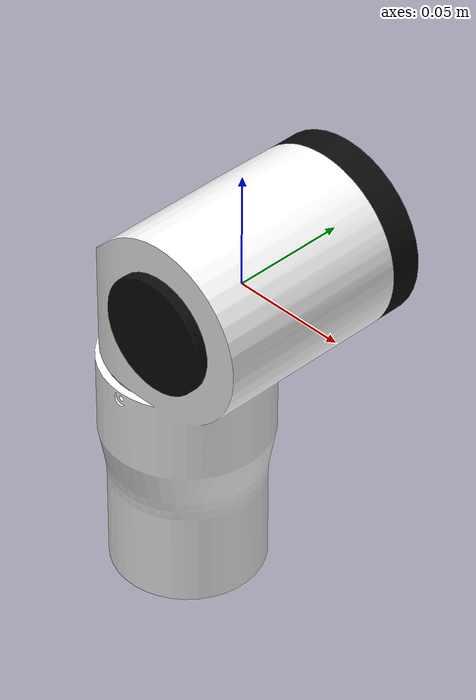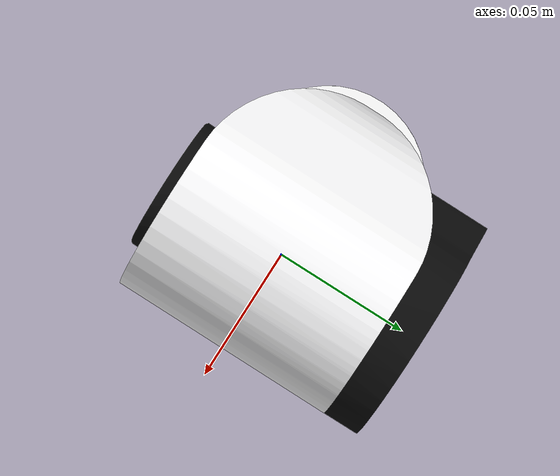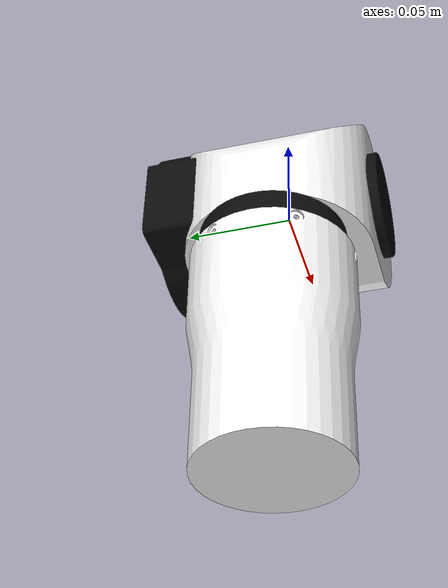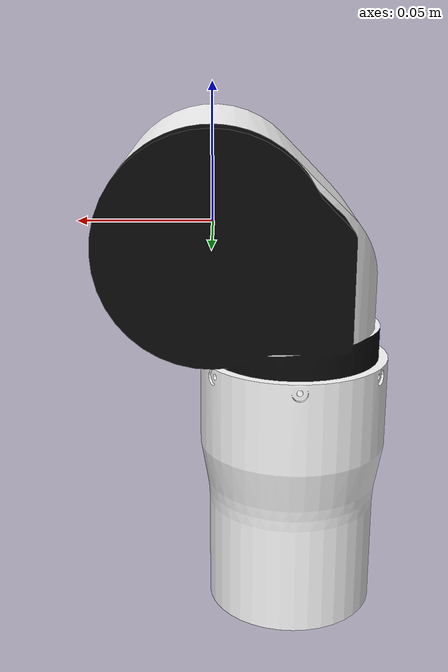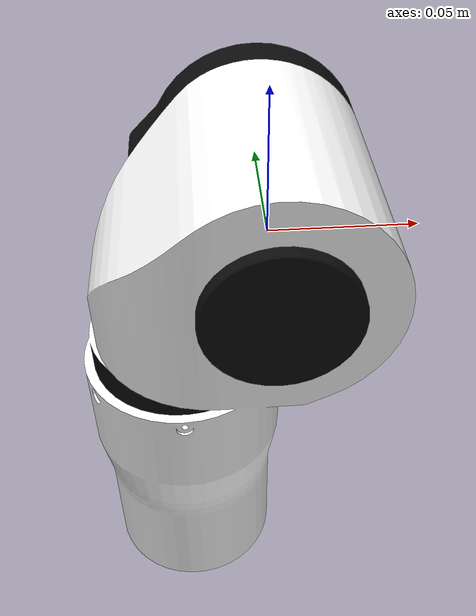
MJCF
<mujoco model="LINK_10">
  <default>
    <default class="visual">
      <geom group="2" type="mesh" contype="0" conaffinity="0"/>
    </default>
    <default class="collision">
      <geom group="3" type="mesh"/>
    </default>
  </default>
  <asset>
    <material name="10,10,10" specular="0.039216" shininess="1.0" rgba="0.039216 0.039216 0.039216 1.000000"/>
    <material name="254,254,255" specular="0.9973853333333333" shininess="1.0" rgba="0.996078 0.996078 1.000000 1.000000"/>
    <mesh file="LINK_10_0.obj"/>
    <mesh file="LINK_10_1.obj"/>
    <mesh file="LINK_10_collision_0.obj"/>
    <mesh file="LINK_10_collision_1.obj"/>
    <mesh file="LINK_10_collision_2.obj"/>
    <mesh file="LINK_10_collision_3.obj"/>
  </asset>
  <worldbody>
    <body name="LINK_10">
      <geom mesh="LINK_10_0" material="254,254,255" class="visual"/>
      <geom mesh="LINK_10_1" material="10,10,10" class="visual"/>
      <geom mesh="LINK_10_collision_0" rgba="0.16078803971418276 0.7854034949055694 0.6202643992811117 1" class="collision"/>
      <geom mesh="LINK_10_collision_1" rgba="0.6880902856110903 0.5047204901106406 0.32305448695002326 1" class="collision"/>
      <geom mesh="LINK_10_collision_2" rgba="0.12923665628677417 0.6244253411426821 0.7981416759151146 1" class="collision"/>
      <geom mesh="LINK_10_collision_3" rgba="0.5683658993681793 0.9470718144713438 0.7317439760378871 1" class="collision"/>
    </body>
  </worldbody>
</mujoco>
